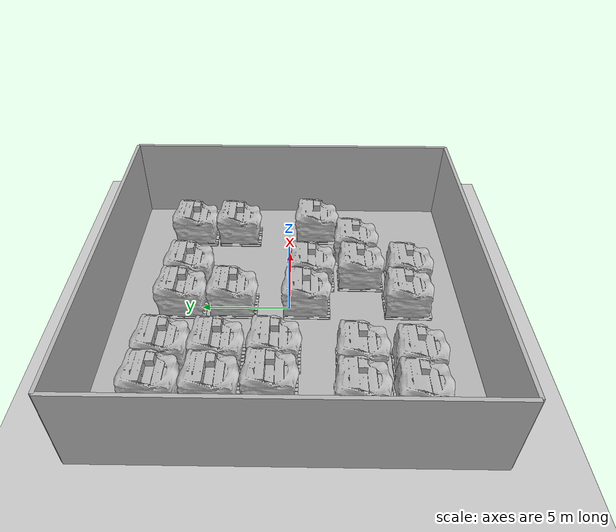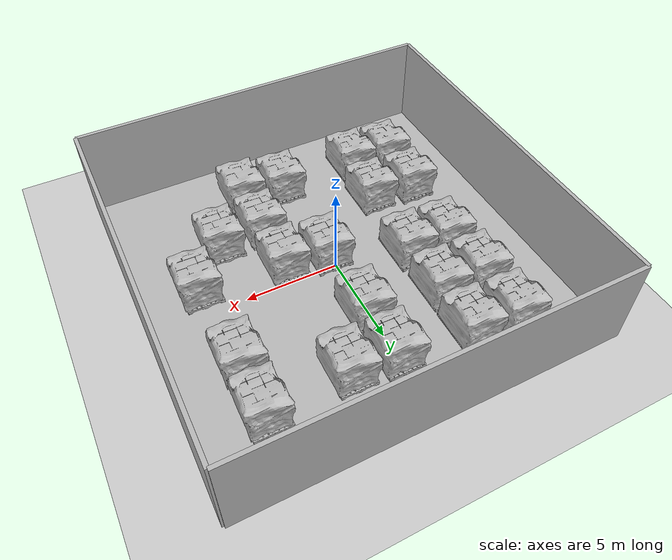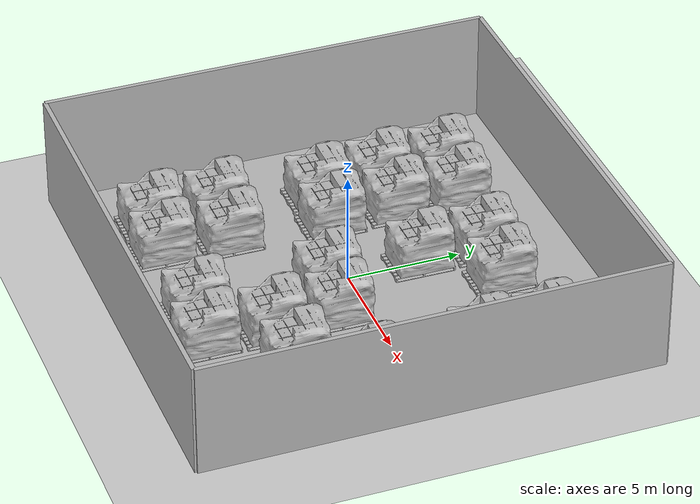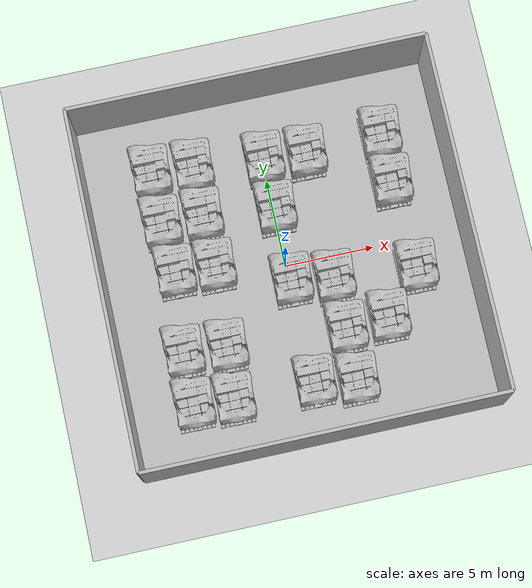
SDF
<sdf version="1.7">
 <world name="default">
  <scene><ambient>0.4 0.4 0.4 1</ambient><background>0.25 0.25 0.25 1</background><shadows>0</shadows></scene>
  <light name="some_light" type="directional">
   <diffuse>0.7 0.7 0.7 0</diffuse>
   <specular>1 1 1 0</specular>
   <direction>-1 -1 -1</direction>
   <attenuation><range>10</range></attenuation>
   <spot><inner_angle>0</inner_angle><outer_angle>0</outer_angle><falloff>0</falloff></spot>
  </light>
  <model name="ground_plane">
   <static>1</static>
   <link name="link">
    <collision name="collision">
     <geometry><plane><normal>0 0 1</normal><size>20 20</size></plane></geometry>
     <surface>
      <contact><collide_bitmask>65535</collide_bitmask></contact>
      <friction><ode><mu>100</mu><mu2>50</mu2></ode></friction>
     </surface>
    </collision>
    <visual name="visual">
     <cast_shadows>0</cast_shadows>
     <geometry><plane><normal>0 0 1</normal><size>20 20</size></plane></geometry>
     <material>
      <script><uri>file://media/materials/scripts/gazebo.material</uri><name>Gazebo/Grey</name></script>
     </material>
    </visual>
   </link>
  </model>
  <model name="warehouse">
   <frame name="warehouse_ground::__model__" attached_to="warehouse_ground::link">
    <pose relative_to="__model__">0 0 0 0 -0 0</pose>
   </frame>
   <static>1</static>
   <link name="warehouse_ground::link">
    <visual name="visual">
     <cast_shadows>0</cast_shadows>
     <geometry><box><size>20 20 0.01</size></box></geometry>
     <material>
      <script>
       <uri>model://warehouse_ground/materials/scripts</uri>
       <uri>model://warehouse_ground/materials/textures</uri>
       <name>warehouse_ground</name>
      </script>
     </material>
    </visual>
    <pose relative_to="warehouse_ground::__model__">0 0 0 0 -0 0</pose>
   </link>
   <frame name="left_wall::__model__" attached_to="left_wall::link">
    <pose relative_to="__model__">-10 0 0 0 -0 1.57</pose>
   </frame>
   <static>1</static>
   <link name="left_wall::link">
    <pose relative_to="left_wall::__model__">0 0 2.5 0 -0 0</pose>
    <collision name="collision"><geometry><box><size>20 0.2 5</size></box></geometry></collision>
    <visual name="visual">
     <cast_shadows>0</cast_shadows>
     <geometry><box><size>20 0.2 5</size></box></geometry>
     <material>
      <script>
       <uri>model://warehouse_wall/materials/scripts</uri>
       <uri>model://warehouse_wall/materials/textures</uri>
       <name>warehouse_wall</name>
      </script>
     </material>
    </visual>
   </link>
   <frame name="right_wall::__model__" attached_to="right_wall::link">
    <pose relative_to="__model__">10 0 0 0 -0 1.57</pose>
   </frame>
   <static>1</static>
   <link name="right_wall::link">
    <pose relative_to="right_wall::__model__">0 0 2.5 0 -0 0</pose>
    <collision name="collision"><geometry><box><size>20 0.2 5</size></box></geometry></collision>
    <visual name="visual">
     <cast_shadows>0</cast_shadows>
     <geometry><box><size>20 0.2 5</size></box></geometry>
     <material>
      <script>
       <uri>model://warehouse_wall/materials/scripts</uri>
       <uri>model://warehouse_wall/materials/textures</uri>
       <name>warehouse_wall</name>
      </script>
     </material>
    </visual>
   </link>
   <frame name="bottom_wall::__model__" attached_to="bottom_wall::link">
    <pose relative_to="__model__">0 -10 0 0 -0 0</pose>
   </frame>
   <static>1</static>
   <link name="bottom_wall::link">
    <pose relative_to="bottom_wall::__model__">0 0 2.5 0 -0 0</pose>
    <collision name="collision"><geometry><box><size>20 0.2 5</size></box></geometry></collision>
    <visual name="visual">
     <cast_shadows>0</cast_shadows>
     <geometry><box><size>20 0.2 5</size></box></geometry>
     <material>
      <script>
       <uri>model://warehouse_wall/materials/scripts</uri>
       <uri>model://warehouse_wall/materials/textures</uri>
       <name>warehouse_wall</name>
      </script>
     </material>
    </visual>
   </link>
   <frame name="top_wall::__model__" attached_to="top_wall::link">
    <pose relative_to="__model__">0 10 0 0 -0 0</pose>
   </frame>
   <static>1</static>
   <link name="top_wall::link">
    <pose relative_to="top_wall::__model__">0 0 2.5 0 -0 0</pose>
    <collision name="collision"><geometry><box><size>20 0.2 5</size></box></geometry></collision>
    <visual name="visual">
     <cast_shadows>0</cast_shadows>
     <geometry><box><size>20 0.2 5</size></box></geometry>
     <material>
      <script>
       <uri>model://warehouse_wall/materials/scripts</uri>
       <uri>model://warehouse_wall/materials/textures</uri>
       <name>warehouse_wall</name>
      </script>
     </material>
    </visual>
   </link>
  </model>
  <gravity>0 0 -9.8</gravity>
  <magnetic_field>6e-06 2.3e-05 -4.2e-05</magnetic_field>
  <atmosphere type="adiabatic"/>
  <physics type="ode">
   <max_step_size>0.001</max_step_size>
   <real_time_factor>1</real_time_factor>
   <real_time_update_rate>1000</real_time_update_rate>
  </physics>
  <spherical_coordinates>
   <surface_model>EARTH_WGS84</surface_model>
   <latitude_deg>0</latitude_deg>
   <longitude_deg>0</longitude_deg>
   <elevation>0</elevation>
   <heading_deg>0</heading_deg>
  </spherical_coordinates>
  <model name="box_pallets_3">
   <static>1</static>
   <link name="link">
    <collision name="collision">
     <pose>0 0 1 0 -0 0</pose>
     <geometry><box><size>2.2 2.8 2</size></box></geometry>
    </collision>
    <visual name="visual">
     <pose>1.35 -1 0 0 0 -0.1</pose>
     <geometry>
      <mesh><scale>0.02 0.02 0.02</scale><uri>model://box_pallets_3/meshes/box_pallet.dae</uri></mesh>
     </geometry>
    </visual>
   </link>
   <pose>-6.23388 6.63202 0 0 -0 0</pose>
  </model>
  <model name="box_pallets_3_0">
   <static>1</static>
   <link name="link">
    <collision name="collision">
     <pose>0 0 1 0 -0 0</pose>
     <geometry><box><size>2.2 2.8 2</size></box></geometry>
    </collision>
    <visual name="visual">
     <pose>1.35 -1 0 0 0 -0.1</pose>
     <geometry>
      <mesh><scale>0.02 0.02 0.02</scale><uri>model://box_pallets_3/meshes/box_pallet.dae</uri></mesh>
     </geometry>
    </visual>
   </link>
   <pose>-6.25061 3.69498 0 0 -0 0</pose>
  </model>
  <model name="box_pallets_3_1">
   <static>1</static>
   <link name="link">
    <collision name="collision">
     <pose>0 0 1 0 -0 0</pose>
     <geometry><box><size>2.2 2.8 2</size></box></geometry>
    </collision>
    <visual name="visual">
     <pose>1.35 -1 0 0 0 -0.1</pose>
     <geometry>
      <mesh><scale>0.02 0.02 0.02</scale><uri>model://box_pallets_3/meshes/box_pallet.dae</uri></mesh>
     </geometry>
    </visual>
   </link>
   <pose>-3.88392 6.4501 0 0 -0 0</pose>
  </model>
  <model name="box_pallets_3_2">
   <static>1</static>
   <link name="link">
    <collision name="collision">
     <pose>0 0 1 0 -0 0</pose>
     <geometry><box><size>2.2 2.8 2</size></box></geometry>
    </collision>
    <visual name="visual">
     <pose>1.35 -1 0 0 0 -0.1</pose>
     <geometry>
      <mesh><scale>0.02 0.02 0.02</scale><uri>model://box_pallets_3/meshes/box_pallet.dae</uri></mesh>
     </geometry>
    </visual>
   </link>
   <pose>-3.937 3.63668 0 0 -0 0</pose>
  </model>
  <model name="box_pallets_3_3">
   <static>1</static>
   <link name="link">
    <collision name="collision">
     <pose>0 0 1 0 -0 0</pose>
     <geometry><box><size>2.2 2.8 2</size></box></geometry>
    </collision>
    <visual name="visual">
     <pose>1.35 -1 0 0 0 -0.1</pose>
     <geometry>
      <mesh><scale>0.02 0.02 0.02</scale><uri>model://box_pallets_3/meshes/box_pallet.dae</uri></mesh>
     </geometry>
    </visual>
   </link>
   <pose>-6.0635 0.8243 0 0 -0 0</pose>
  </model>
  <model name="box_pallets_3_4">
   <static>1</static>
   <link name="link">
    <collision name="collision">
     <pose>0 0 1 0 -0 0</pose>
     <geometry><box><size>2.2 2.8 2</size></box></geometry>
    </collision>
    <visual name="visual">
     <pose>1.35 -1 0 0 0 -0.1</pose>
     <geometry>
      <mesh><scale>0.02 0.02 0.02</scale><uri>model://box_pallets_3/meshes/box_pallet.dae</uri></mesh>
     </geometry>
    </visual>
   </link>
   <pose>-3.85216 0.679841 0 0 -0 0</pose>
  </model>
  <model name="box_pallets_3_5">
   <static>1</static>
   <link name="link">
    <collision name="collision">
     <pose>0 0 1 0 -0 0</pose>
     <geometry><box><size>2.2 2.8 2</size></box></geometry>
    </collision>
    <visual name="visual">
     <pose>1.35 -1 0 0 0 -0.1</pose>
     <geometry>
      <mesh><scale>0.02 0.02 0.02</scale><uri>model://box_pallets_3/meshes/box_pallet.dae</uri></mesh>
     </geometry>
    </visual>
   </link>
   <pose>-6.51681 -3.63004 0 0 -0 0</pose>
  </model>
  <model name="box_pallets_3_6">
   <static>1</static>
   <link name="link">
    <collision name="collision">
     <pose>0 0 1 0 -0 0</pose>
     <geometry><box><size>2.2 2.8 2</size></box></geometry>
    </collision>
    <visual name="visual">
     <pose>1.35 -1 0 0 0 -0.1</pose>
     <geometry>
      <mesh><scale>0.02 0.02 0.02</scale><uri>model://box_pallets_3/meshes/box_pallet.dae</uri></mesh>
     </geometry>
    </visual>
   </link>
   <pose>-4.14269 -3.82484 0 0 -0 0</pose>
  </model>
  <model name="box_pallets_3_7">
   <static>1</static>
   <link name="link">
    <collision name="collision">
     <pose>0 0 1 0 -0 0</pose>
     <geometry><box><size>2.2 2.8 2</size></box></geometry>
    </collision>
    <visual name="visual">
     <pose>1.35 -1 0 0 0 -0.1</pose>
     <geometry>
      <mesh><scale>0.02 0.02 0.02</scale><uri>model://box_pallets_3/meshes/box_pallet.dae</uri></mesh>
     </geometry>
    </visual>
   </link>
   <pose>-6.56789 -6.57125 0 0 -0 0</pose>
  </model>
  <model name="box_pallets_3_8">
   <static>1</static>
   <link name="link">
    <collision name="collision">
     <pose>0 0 1 0 -0 0</pose>
     <geometry><box><size>2.2 2.8 2</size></box></geometry>
    </collision>
    <visual name="visual">
     <pose>1.35 -1 0 0 0 -0.1</pose>
     <geometry>
      <mesh><scale>0.02 0.02 0.02</scale><uri>model://box_pallets_3/meshes/box_pallet.dae</uri></mesh>
     </geometry>
    </visual>
   </link>
   <pose>-4.36099 -6.75474 0 0 -0 0</pose>
  </model>
  <model name="box_pallets_3_9">
   <static>1</static>
   <link name="link">
    <collision name="collision">
     <pose>0 0 1 0 -0 0</pose>
     <geometry><box><size>2.2 2.8 2</size></box></geometry>
    </collision>
    <visual name="visual">
     <pose>1.35 -1 0 0 0 -0.1</pose>
     <geometry>
      <mesh><scale>0.02 0.02 0.02</scale><uri>model://box_pallets_3/meshes/box_pallet.dae</uri></mesh>
     </geometry>
    </visual>
   </link>
   <pose>0.044049 6.04643 0 0 -0 0</pose>
  </model>
  <model name="box_pallets_3_10">
   <static>1</static>
   <link name="link">
    <collision name="collision">
     <pose>0 0 1 0 -0 0</pose>
     <geometry><box><size>2.2 2.8 2</size></box></geometry>
    </collision>
    <visual name="visual">
     <pose>1.35 -1 0 0 0 -0.1</pose>
     <geometry>
      <mesh><scale>0.02 0.02 0.02</scale><uri>model://box_pallets_3/meshes/box_pallet.dae</uri></mesh>
     </geometry>
    </visual>
   </link>
   <pose>0.090828 3.14876 0 0 -0 0</pose>
  </model>
  <model name="box_pallets_3_11">
   <static>1</static>
   <link name="link">
    <collision name="collision">
     <pose>0 0 1 0 -0 0</pose>
     <geometry><box><size>2.2 2.8 2</size></box></geometry>
    </collision>
    <visual name="visual">
     <pose>1.35 -1 0 0 0 -0.1</pose>
     <geometry>
      <mesh><scale>0.02 0.02 0.02</scale><uri>model://box_pallets_3/meshes/box_pallet.dae</uri></mesh>
     </geometry>
    </visual>
   </link>
   <pose>2.42227 5.90071 0 0 -0 0</pose>
  </model>
  <model name="box_pallets_3_12">
   <static>1</static>
   <link name="link">
    <collision name="collision">
     <pose>0 0 1 0 -0 0</pose>
     <geometry><box><size>2.2 2.8 2</size></box></geometry>
    </collision>
    <visual name="visual">
     <pose>1.35 -1 0 0 0 -0.1</pose>
     <geometry>
      <mesh><scale>0.02 0.02 0.02</scale><uri>model://box_pallets_3/meshes/box_pallet.dae</uri></mesh>
     </geometry>
    </visual>
   </link>
   <pose>6.70751 6.0749 0 0 -0 0</pose>
  </model>
  <model name="box_pallets_3_13">
   <static>1</static>
   <link name="link">
    <collision name="collision">
     <pose>0 0 1 0 -0 0</pose>
     <geometry><box><size>2.2 2.8 2</size></box></geometry>
    </collision>
    <visual name="visual">
     <pose>1.35 -1 0 0 0 -0.1</pose>
     <geometry>
      <mesh><scale>0.02 0.02 0.02</scale><uri>model://box_pallets_3/meshes/box_pallet.dae</uri></mesh>
     </geometry>
    </visual>
   </link>
   <pose>0.092209 -0.995954 0 0 -0 0</pose>
  </model>
  <model name="box_pallets_3_14">
   <static>1</static>
   <link name="link">
    <collision name="collision">
     <pose>0 0 1 0 -0 0</pose>
     <geometry><box><size>2.2 2.8 2</size></box></geometry>
    </collision>
    <visual name="visual">
     <pose>1.35 -1 0 0 0 -0.1</pose>
     <geometry>
      <mesh><scale>0.02 0.02 0.02</scale><uri>model://box_pallets_3/meshes/box_pallet.dae</uri></mesh>
     </geometry>
    </visual>
   </link>
   <pose>2.4057 -1.32803 0 0 -0 0</pose>
  </model>
  <model name="box_pallets_3_16">
   <static>1</static>
   <link name="link">
    <collision name="collision">
     <pose>0 0 1 0 -0 0</pose>
     <geometry><box><size>2.2 2.8 2</size></box></geometry>
    </collision>
    <visual name="visual">
     <pose>1.35 -1 0 0 0 -0.1</pose>
     <geometry>
      <mesh><scale>0.02 0.02 0.02</scale><uri>model://box_pallets_3/meshes/box_pallet.dae</uri></mesh>
     </geometry>
    </visual>
   </link>
   <pose>2.43865 -4.22698 0 0 -0 0</pose>
  </model>
  <model name="box_pallets_3_17">
   <static>1</static>
   <link name="link">
    <collision name="collision">
     <pose>0 0 1 0 -0 0</pose>
     <geometry><box><size>2.2 2.8 2</size></box></geometry>
    </collision>
    <visual name="visual">
     <pose>1.35 -1 0 0 0 -0.1</pose>
     <geometry>
      <mesh><scale>0.02 0.02 0.02</scale><uri>model://box_pallets_3/meshes/box_pallet.dae</uri></mesh>
     </geometry>
    </visual>
   </link>
   <pose>4.83609 -4.11251 0 0 -0 0</pose>
  </model>
  <model name="box_pallets_3_18">
   <static>1</static>
   <link name="link">
    <collision name="collision">
     <pose>0 0 1 0 -0 0</pose>
     <geometry><box><size>2.2 2.8 2</size></box></geometry>
    </collision>
    <visual name="visual">
     <pose>1.35 -1 0 0 0 -0.1</pose>
     <geometry>
      <mesh><scale>0.02 0.02 0.02</scale><uri>model://box_pallets_3/meshes/box_pallet.dae</uri></mesh>
     </geometry>
    </visual>
   </link>
   <pose>0.107354 -6.75699 0 0 -0 0</pose>
  </model>
  <model name="box_pallets_3_20">
   <static>1</static>
   <link name="link">
    <collision name="collision">
     <pose>0 0 1 0 -0 0</pose>
     <geometry><box><size>2.2 2.8 2</size></box></geometry>
    </collision>
    <visual name="visual">
     <pose>1.35 -1 0 0 0 -0.1</pose>
     <geometry>
      <mesh><scale>0.02 0.02 0.02</scale><uri>model://box_pallets_3/meshes/box_pallet.dae</uri></mesh>
     </geometry>
    </visual>
   </link>
   <pose>6.69038 3.26327 0 0 -0 0</pose>
  </model>
  <model name="box_pallets_3_15">
   <static>1</static>
   <link name="link">
    <collision name="collision">
     <pose>0 0 1 0 -0 0</pose>
     <geometry><box><size>2.2 2.8 2</size></box></geometry>
    </collision>
    <visual name="visual">
     <pose>1.35 -1 0 0 0 -0.1</pose>
     <geometry>
      <mesh><scale>0.02 0.02 0.02</scale><uri>model://box_pallets_3/meshes/box_pallet.dae</uri></mesh>
     </geometry>
    </visual>
   </link>
   <pose>2.40368 -7.11694 0 0 -0 0</pose>
  </model>
  <model name="box_pallets_3_19">
   <static>1</static>
   <link name="link">
    <collision name="collision">
     <pose>0 0 1 0 -0 0</pose>
     <geometry><box><size>2.2 2.8 2</size></box></geometry>
    </collision>
    <visual name="visual">
     <pose>1.35 -1 0 0 0 -0.1</pose>
     <geometry>
      <mesh><scale>0.02 0.02 0.02</scale><uri>model://box_pallets_3/meshes/box_pallet.dae</uri></mesh>
     </geometry>
    </visual>
   </link>
   <pose>6.9545 -1.72594 0 0 -0 0</pose>
  </model>
 </world>
</sdf>
